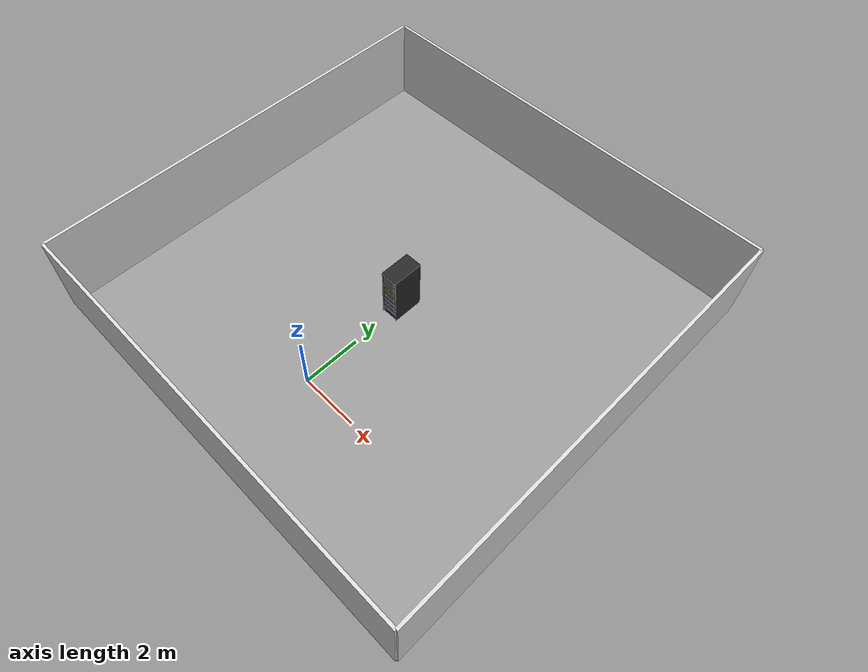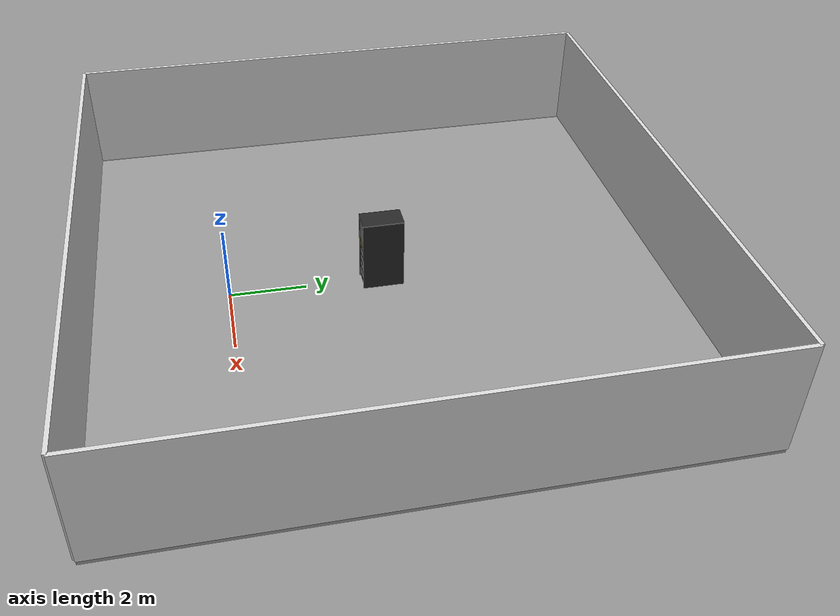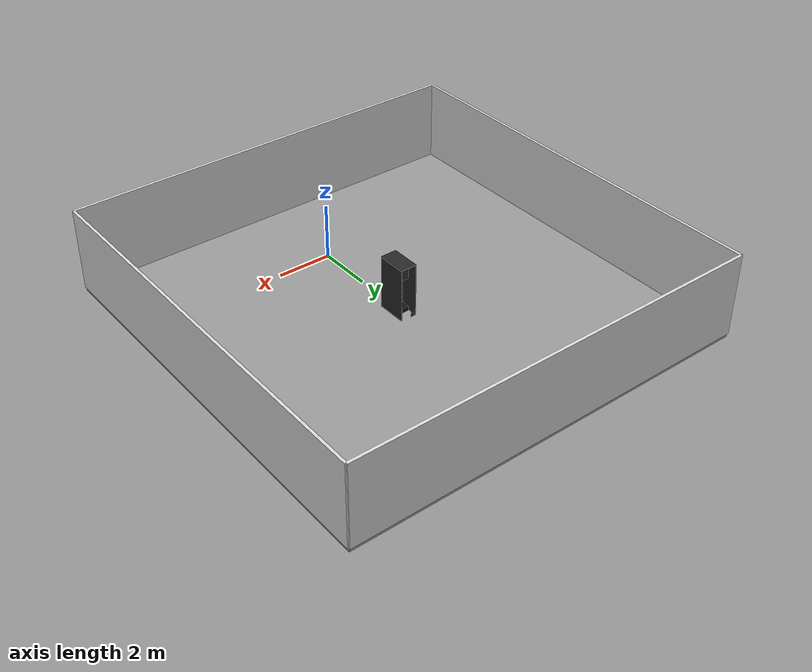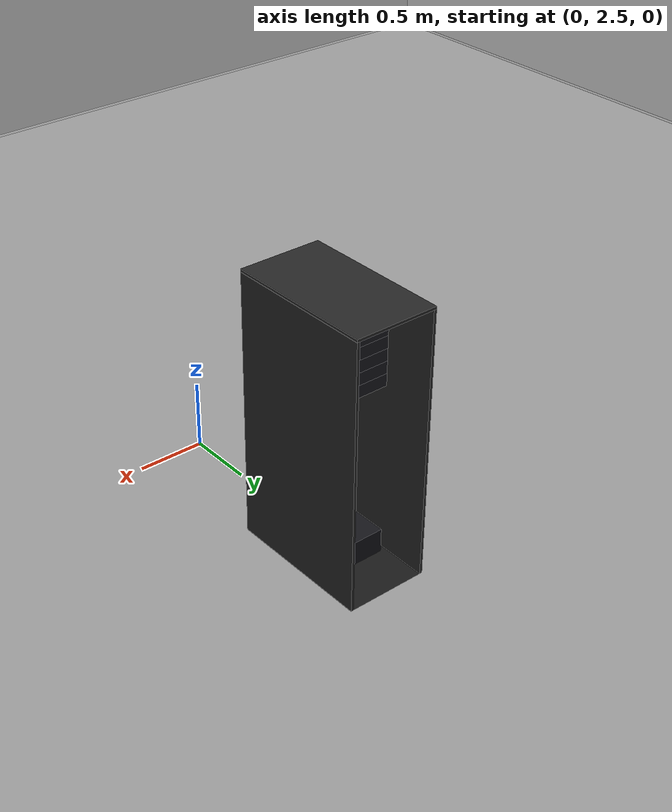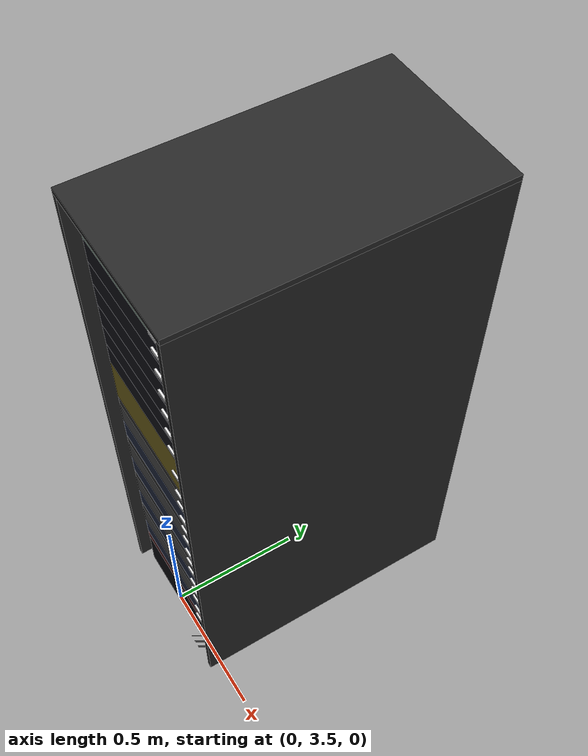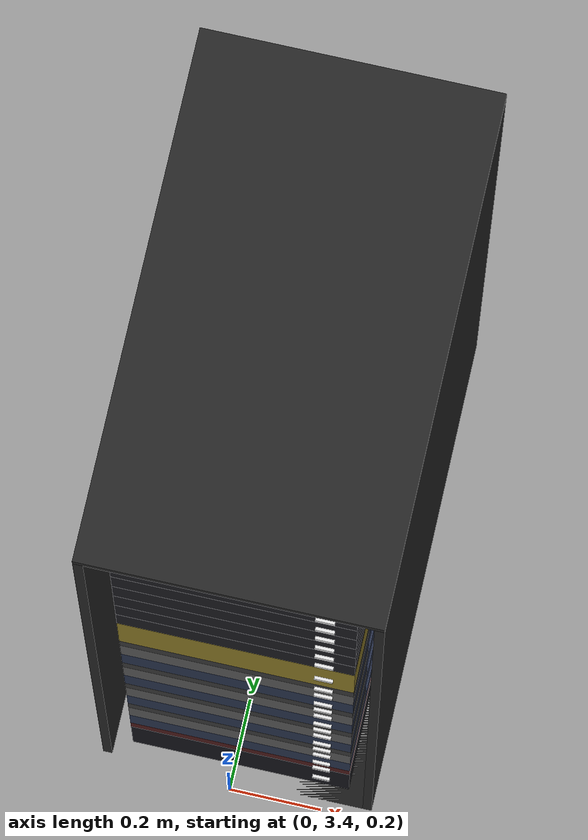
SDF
<sdf version="1.9">
 <world name="server_rack">
  <plugin filename="ignition-gazebo-physics-system" name="ignition::gazebo::systems::Physics"/>
  <plugin filename="ignition-gazebo-sensors-system" name="ignition::gazebo::systems::Sensors">
   <render_engine>ogre2</render_engine>
  </plugin>
  <plugin filename="ignition-gazebo-contact-system" name="ignition::gazebo::systems::Contact"/>
  <plugin filename="ignition-gazebo-scene-broadcaster-system" name="ignition::gazebo::systems::SceneBroadcaster"/>
  <plugin filename="ignition-gazebo-user-commands-system" name="ignition::gazebo::systems::UserCommands"/>
  <physics name="1ms" type="ode">
   <max_step_size>0.001</max_step_size>
   <real_time_factor>1.0</real_time_factor>
  </physics>
  <scene>
   <ambient>0.4 0.4 0.4 1.0</ambient>
   <background>0.7 0.7 0.7 1.0</background>
   <grid>true</grid>
   <origin_visual>true</origin_visual>
  </scene>
  <atmosphere type="adiabatic">
   <temperature>288</temperature>
   <temperature_gradient>0.2</temperature_gradient>
  </atmosphere>
  <light type="directional" name="sun">
   <pose>0 0 10 0 0 0</pose>
   <diffuse>0.8 0.8 0.8 1</diffuse>
   <specular>0.2 0.2 0.2 1</specular>
   <direction>-0.5 0.1 -0.9</direction>
  </light>
  <model name="room_floor">
   <static>true</static>
   <pose>0 4.0 -0.1 0 0 0</pose>
   <link name="link">
    <collision name="collision"><geometry><box><size>15.0 15.0 0.1</size></box></geometry></collision>
    <visual name="visual">
     <geometry><box><size>15.0 15.0 0.1</size></box></geometry>
     <material><ambient>0.6 0.6 0.6 1</ambient><diffuse>0.6 0.6 0.6 1</diffuse></material>
    </visual>
   </link>
  </model>
  <model name="room_wall_front">
   <static>true</static>
   <pose>0 -3.5 1.5 0 0 0</pose>
   <link name="link">
    <collision name="collision"><geometry><box><size>15.0 0.1 3</size></box></geometry></collision>
    <visual name="visual">
     <geometry><box><size>15.0 0.1 3</size></box></geometry>
     <material><ambient>0.85 0.85 0.85 1</ambient><diffuse>0.85 0.85 0.85 1</diffuse></material>
    </visual>
   </link>
  </model>
  <model name="room_wall_back">
   <static>true</static>
   <pose>0 11.5 1.5 0 0 0</pose>
   <link name="link">
    <collision name="collision"><geometry><box><size>15.0 0.1 3</size></box></geometry></collision>
    <visual name="visual">
     <geometry><box><size>15.0 0.1 3</size></box></geometry>
     <material><ambient>0.85 0.85 0.85 1</ambient><diffuse>0.85 0.85 0.85 1</diffuse></material>
    </visual>
   </link>
  </model>
  <model name="room_wall_left">
   <static>true</static>
   <pose>-7.5 4.0 1.5 0 0 0</pose>
   <link name="link">
    <collision name="collision"><geometry><box><size>0.1 15.0 3</size></box></geometry></collision>
    <visual name="visual">
     <geometry><box><size>0.1 15.0 3</size></box></geometry>
     <material><ambient>0.85 0.85 0.85 1</ambient><diffuse>0.85 0.85 0.85 1</diffuse></material>
    </visual>
   </link>
  </model>
  <model name="room_wall_right">
   <static>true</static>
   <pose>7.5 4.0 1.5 0 0 0</pose>
   <link name="link">
    <collision name="collision"><geometry><box><size>0.1 15.0 3</size></box></geometry></collision>
    <visual name="visual">
     <geometry><box><size>0.1 15.0 3</size></box></geometry>
     <material><ambient>0.85 0.85 0.85 1</ambient><diffuse>0.85 0.85 0.85 1</diffuse></material>
    </visual>
   </link>
  </model>
  <include><name>rack_r0_c0</name><uri>model://server_rack_1</uri><pose>0 4.0 -0.1 0 0 0</pose></include>
 </world>
</sdf>

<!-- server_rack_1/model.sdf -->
<sdf version="1.9">
  <model name="server_rack_1">
    <static>true</static>

    <!-- ===================== FRAME ===================== -->

    <link name="frame_side_left">
      <pose>-0.29 0 1.0 0 0 0</pose>
      <collision name="collision">
        <geometry><box><size>0.02 1.07 2.0</size></box></geometry>
      </collision>
      <visual name="visual">
        <geometry><box><size>0.02 1.07 2.0</size></box></geometry>
        <material>
          <ambient>0.15 0.15 0.15 1</ambient>
          <diffuse>0.15 0.15 0.15 1</diffuse>
        </material>
      </visual>
    </link>

    <link name="frame_side_right">
      <pose>0.29 0 1.0 0 0 0</pose>
      <collision name="collision">
        <geometry><box><size>0.02 1.07 2.0</size></box></geometry>
      </collision>
      <visual name="visual">
        <geometry><box><size>0.02 1.07 2.0</size></box></geometry>
        <material>
          <ambient>0.15 0.15 0.15 1</ambient>
          <diffuse>0.15 0.15 0.15 1</diffuse>
        </material>
      </visual>
    </link>

    <link name="frame_top">
      <pose>0 0 2.01 0 0 0</pose>
      <collision name="collision">
        <geometry><box><size>0.60 1.07 0.02</size></box></geometry>
      </collision>
      <visual name="visual">
        <geometry><box><size>0.60 1.07 0.02</size></box></geometry>
        <material>
          <ambient>0.15 0.15 0.15 1</ambient>
          <diffuse>0.15 0.15 0.15 1</diffuse>
        </material>
      </visual>
    </link>

    <link name="frame_plinth">
      <pose>0 0 0.025 0 0 0</pose>
      <collision name="collision">
        <geometry><box><size>0.60 1.07 0.05</size></box></geometry>
      </collision>
      <visual name="visual">
        <geometry><box><size>0.60 1.07 0.05</size></box></geometry>
        <material>
          <ambient>0.10 0.10 0.10 1</ambient>
          <diffuse>0.10 0.10 0.10 1</diffuse>
        </material>
      </visual>
    </link>

    <!-- ===================== EQUIPMENT ===================== -->

    <!-- 4RU UPS, U1-U4 -->
    <link name="ups">
      <pose>0 -0.15 0.1389 0 0 0</pose>
      <collision name="collision">
        <geometry><box><size>0.483 0.70 0.1778</size></box></geometry>
      </collision>
      <visual name="visual">
        <geometry><box><size>0.483 0.70 0.1778</size></box></geometry>
        <material>
          <ambient>0.08 0.08 0.10 1</ambient>
          <diffuse>0.08 0.08 0.10 1</diffuse>
        </material>
      </visual>
    </link>

    <!-- 1RU PDU, U5 -->
    <link name="pdu">
      <pose>0 -0.29 0.2500 0 0 0</pose>
      <collision name="collision">
        <geometry><box><size>0.483 0.42 0.0444</size></box></geometry>
      </collision>
      <visual name="visual">
        <geometry><box><size>0.483 0.42 0.0444</size></box></geometry>
        <material>
          <ambient>0.30 0.10 0.10 1</ambient>
          <diffuse>0.30 0.10 0.10 1</diffuse>
        </material>
      </visual>
    </link>

    <!-- 2RU network switch 1, U6-U7 -->
    <link name="switch_1">
      <pose>0 -0.29 0.3167 0 0 0</pose>
      <collision name="collision">
        <geometry><box><size>0.483 0.42 0.0889</size></box></geometry>
      </collision>
      <visual name="visual">
        <geometry><box><size>0.483 0.42 0.0889</size></box></geometry>
        <material>
          <ambient>0.16 0.20 0.30 1</ambient>
          <diffuse>0.16 0.20 0.30 1</diffuse>
        </material>
      </visual>
    </link>

    <!-- 2RU patch panel 1, U8-U9 -->
    <link name="patch_panel_1">
      <pose>0 -0.425 0.4056 0 0 0</pose>
      <collision name="collision">
        <geometry><box><size>0.483 0.15 0.0889</size></box></geometry>
      </collision>
      <visual name="visual">
        <geometry><box><size>0.483 0.15 0.0889</size></box></geometry>
        <material>
          <ambient>0.35 0.35 0.35 1</ambient>
          <diffuse>0.35 0.35 0.35 1</diffuse>
        </material>
      </visual>
    </link>

    <!-- 1RU cable manager 1, U10 -->
    <link name="cable_manager_1">
      <pose>0 -0.425 0.4723 0 0 0</pose>
      <collision name="collision">
        <geometry><box><size>0.483 0.15 0.0444</size></box></geometry>
      </collision>
      <visual name="visual">
        <geometry><box><size>0.483 0.15 0.0444</size></box></geometry>
        <material>
          <ambient>0.22 0.22 0.22 1</ambient>
          <diffuse>0.22 0.22 0.22 1</diffuse>
        </material>
      </visual>
    </link>

    <!-- 2RU network switch 2, U11-U12 -->
    <link name="switch_2">
      <pose>0 -0.29 0.5390 0 0 0</pose>
      <collision name="collision">
        <geometry><box><size>0.483 0.42 0.0889</size></box></geometry>
      </collision>
      <visual name="visual">
        <geometry><box><size>0.483 0.42 0.0889</size></box></geometry>
        <material>
          <ambient>0.16 0.20 0.30 1</ambient>
          <diffuse>0.16 0.20 0.30 1</diffuse>
        </material>
      </visual>
    </link>

    <!-- 2RU patch panel 2, U13-U14 -->
    <link name="patch_panel_2">
      <pose>0 -0.425 0.6279 0 0 0</pose>
      <collision name="collision">
        <geometry><box><size>0.483 0.15 0.0889</size></box></geometry>
      </collision>
      <visual name="visual">
        <geometry><box><size>0.483 0.15 0.0889</size></box></geometry>
        <material>
          <ambient>0.35 0.35 0.35 1</ambient>
          <diffuse>0.35 0.35 0.35 1</diffuse>
        </material>
      </visual>
    </link>

    <!-- 1RU cable manager 2, U15 -->
    <link name="cable_manager_2">
      <pose>0 -0.425 0.6945 0 0 0</pose>
      <collision name="collision">
        <geometry><box><size>0.483 0.15 0.0444</size></box></geometry>
      </collision>
      <visual name="visual">
        <geometry><box><size>0.483 0.15 0.0444</size></box></geometry>
        <material>
          <ambient>0.22 0.22 0.22 1</ambient>
          <diffuse>0.22 0.22 0.22 1</diffuse>
        </material>
      </visual>
    </link>

    <!-- 2RU network switch 3, U16-U17 -->
    <link name="switch_3">
      <pose>0 -0.29 0.7612 0 0 0</pose>
      <collision name="collision">
        <geometry><box><size>0.483 0.42 0.0889</size></box></geometry>
      </collision>
      <visual name="visual">
        <geometry><box><size>0.483 0.42 0.0889</size></box></geometry>
        <material>
          <ambient>0.16 0.20 0.30 1</ambient>
          <diffuse>0.16 0.20 0.30 1</diffuse>
        </material>
      </visual>
    </link>

    <!-- 2RU patch panel 3, U18-U19 -->
    <link name="patch_panel_3">
      <pose>0 -0.425 0.8501 0 0 0</pose>
      <collision name="collision">
        <geometry><box><size>0.483 0.15 0.0889</size></box></geometry>
      </collision>
      <visual name="visual">
        <geometry><box><size>0.483 0.15 0.0889</size></box></geometry>
        <material>
          <ambient>0.35 0.35 0.35 1</ambient>
          <diffuse>0.35 0.35 0.35 1</diffuse>
        </material>
      </visual>
    </link>

    <!-- 1RU cable manager 3, U20 -->
    <link name="cable_manager_3">
      <pose>0 -0.425 0.9168 0 0 0</pose>
      <collision name="collision">
        <geometry><box><size>0.483 0.15 0.0444</size></box></geometry>
      </collision>
      <visual name="visual">
        <geometry><box><size>0.483 0.15 0.0444</size></box></geometry>
        <material>
          <ambient>0.22 0.22 0.22 1</ambient>
          <diffuse>0.22 0.22 0.22 1</diffuse>
        </material>
      </visual>
    </link>

    <!-- 2RU network switch 4, U21-U22 -->
    <link name="switch_4">
      <pose>0 -0.29 0.9835 0 0 0</pose>
      <collision name="collision">
        <geometry><box><size>0.483 0.42 0.0889</size></box></geometry>
      </collision>
      <visual name="visual">
        <geometry><box><size>0.483 0.42 0.0889</size></box></geometry>
        <material>
          <ambient>0.16 0.20 0.30 1</ambient>
          <diffuse>0.16 0.20 0.30 1</diffuse>
        </material>
      </visual>
    </link>

    <!-- 2RU patch panel 4, U23-U24 -->
    <link name="patch_panel_4">
      <pose>0 -0.425 1.0724 0 0 0</pose>
      <collision name="collision">
        <geometry><box><size>0.483 0.15 0.0889</size></box></geometry>
      </collision>
      <visual name="visual">
        <geometry><box><size>0.483 0.15 0.0889</size></box></geometry>
        <material>
          <ambient>0.35 0.35 0.35 1</ambient>
          <diffuse>0.35 0.35 0.35 1</diffuse>
        </material>
      </visual>
    </link>

    <!-- 1RU cable manager 4, U25 -->
    <link name="cable_manager_4">
      <pose>0 -0.425 1.1390 0 0 0</pose>
      <collision name="collision">
        <geometry><box><size>0.483 0.15 0.0444</size></box></geometry>
      </collision>
      <visual name="visual">
        <geometry><box><size>0.483 0.15 0.0444</size></box></geometry>
        <material>
          <ambient>0.22 0.22 0.22 1</ambient>
          <diffuse>0.22 0.22 0.22 1</diffuse>
        </material>
      </visual>
    </link>

    <!-- 4RU fiber patch panel, U26-U29 -->
    <link name="fiber_patch_panel">
      <pose>0 -0.35 1.2502 0 0 0</pose>
      <collision name="collision">
        <geometry><box><size>0.483 0.30 0.1778</size></box></geometry>
      </collision>
      <visual name="visual">
        <geometry><box><size>0.483 0.30 0.1778</size></box></geometry>
        <material>
          <ambient>0.55 0.48 0.15 1</ambient>
          <diffuse>0.55 0.48 0.15 1</diffuse>
        </material>
      </visual>
    </link>

    <!-- 2RU server 1, U30-U31 -->
    <link name="server_1">
      <pose>0 -0.15 1.3835 0 0 0</pose>
      <collision name="collision">
        <geometry><box><size>0.483 0.70 0.0889</size></box></geometry>
      </collision>
      <visual name="visual">
        <geometry><box><size>0.483 0.70 0.0889</size></box></geometry>
        <material>
          <ambient>0.10 0.10 0.12 1</ambient>
          <diffuse>0.10 0.10 0.12 1</diffuse>
        </material>
      </visual>
    </link>

    <!-- 2RU server 2, U32-U33 -->
    <link name="server_2">
      <pose>0 -0.15 1.4724 0 0 0</pose>
      <collision name="collision">
        <geometry><box><size>0.483 0.70 0.0889</size></box></geometry>
      </collision>
      <visual name="visual">
        <geometry><box><size>0.483 0.70 0.0889</size></box></geometry>
        <material>
          <ambient>0.10 0.10 0.12 1</ambient>
          <diffuse>0.10 0.10 0.12 1</diffuse>
        </material>
      </visual>
    </link>

    <!-- 2RU server 3, U34-U35 -->
    <link name="server_3">
      <pose>0 -0.15 1.5613 0 0 0</pose>
      <collision name="collision">
        <geometry><box><size>0.483 0.70 0.0889</size></box></geometry>
      </collision>
      <visual name="visual">
        <geometry><box><size>0.483 0.70 0.0889</size></box></geometry>
        <material>
          <ambient>0.10 0.10 0.12 1</ambient>
          <diffuse>0.10 0.10 0.12 1</diffuse>
        </material>
      </visual>
    </link>

    <!-- 2RU server 4, U36-U37 -->
    <link name="server_4">
      <pose>0 -0.15 1.6502 0 0 0</pose>
      <collision name="collision">
        <geometry><box><size>0.483 0.70 0.0889</size></box></geometry>
      </collision>
      <visual name="visual">
        <geometry><box><size>0.483 0.70 0.0889</size></box></geometry>
        <material>
          <ambient>0.10 0.10 0.12 1</ambient>
          <diffuse>0.10 0.10 0.12 1</diffuse>
        </material>
      </visual>
    </link>

    <!-- 2RU server 5, U38-U39 -->
    <link name="server_5">
      <pose>0 -0.15 1.7391 0 0 0</pose>
      <collision name="collision">
        <geometry><box><size>0.483 0.70 0.0889</size></box></geometry>
      </collision>
      <visual name="visual">
        <geometry><box><size>0.483 0.70 0.0889</size></box></geometry>
        <material>
          <ambient>0.10 0.10 0.12 1</ambient>
          <diffuse>0.10 0.10 0.12 1</diffuse>
        </material>
      </visual>
    </link>

    <!-- 2RU server 6, U40-U41 -->
    <link name="server_6">
      <pose>0 -0.15 1.8280 0 0 0</pose>
      <collision name="collision">
        <geometry><box><size>0.483 0.70 0.0889</size></box></geometry>
      </collision>
      <visual name="visual">
        <geometry><box><size>0.483 0.70 0.0889</size></box></geometry>
        <material>
          <ambient>0.10 0.10 0.12 1</ambient>
          <diffuse>0.10 0.10 0.12 1</diffuse>
        </material>
      </visual>
    </link>

    <!-- 1RU KVM console, U42 -->
    <link name="kvm">
      <pose>0 -0.29 1.8947 0 0 0</pose>
      <collision name="collision">
        <geometry><box><size>0.483 0.42 0.0444</size></box></geometry>
      </collision>
      <visual name="visual">
        <geometry><box><size>0.483 0.42 0.0444</size></box></geometry>
        <material>
          <ambient>0.12 0.25 0.18 1</ambient>
          <diffuse>0.12 0.25 0.18 1</diffuse>
        </material>
      </visual>
    </link>

    <!-- ===================== RFID TAGS =====================
         Local y = -0.503: 3 mm proud of the rack front plane (y = -0.50).
         Local z equals the tagged equipment's local z. -->

    <!-- ups, U1-4 -->
    <model name="barcode_label_031FB00">
      <static>true</static>
      <pose>0.18 -0.5042 0.1389 0 0 0</pose>
      <link name="label_link">
        <visual name="substrate">
          <geometry><box><size>0.03810 0.00635 0.01270</size></box></geometry>
          <material>
            <ambient>0.9 0.9 0.9 1</ambient>
            <diffuse>0.9 0.9 0.9 1</diffuse>
          </material>
        </visual>
        <visual name="print">
          <pose>0 -0.00327 0 1.5708 0 0</pose>
          <geometry><box><size>0.03810 0.01270 0.0002</size></box></geometry>
          <material>
            <ambient>1 1 1 1</ambient>
            <diffuse>1 1 1 1</diffuse>
            <pbr><metal>
              <albedo_map>model://barcode_labels/materials/textures/031FB00.png</albedo_map>
              <metalness>0.0</metalness>
              <roughness>1.0</roughness>
            </metal></pbr>
          </material>
        </visual>
      </link>
    </model>

    <!-- pdu, U5-5 -->
    <model name="barcode_label_031FB01">
      <static>true</static>
      <pose>0.18 -0.5042 0.2500 0 0 0</pose>
      <link name="label_link">
        <visual name="substrate">
          <geometry><box><size>0.03810 0.00635 0.01270</size></box></geometry>
          <material>
            <ambient>0.9 0.9 0.9 1</ambient>
            <diffuse>0.9 0.9 0.9 1</diffuse>
          </material>
        </visual>
        <visual name="print">
          <pose>0 -0.00327 0 1.5708 0 0</pose>
          <geometry><box><size>0.03810 0.01270 0.0002</size></box></geometry>
          <material>
            <ambient>1 1 1 1</ambient>
            <diffuse>1 1 1 1</diffuse>
            <pbr><metal>
              <albedo_map>model://barcode_labels/materials/textures/031FB01.png</albedo_map>
              <metalness>0.0</metalness>
              <roughness>1.0</roughness>
            </metal></pbr>
          </material>
        </visual>
      </link>
    </model>

    <!-- switch, U6-7 -->
    <model name="barcode_label_031FB02">
      <static>true</static>
      <pose>0.18 -0.5042 0.3167 0 0 0</pose>
      <link name="label_link">
        <visual name="substrate">
          <geometry><box><size>0.03810 0.00635 0.01270</size></box></geometry>
          <material>
            <ambient>0.9 0.9 0.9 1</ambient>
            <diffuse>0.9 0.9 0.9 1</diffuse>
          </material>
        </visual>
        <visual name="print">
          <pose>0 -0.00327 0 1.5708 0 0</pose>
          <geometry><box><size>0.03810 0.01270 0.0002</size></box></geometry>
          <material>
            <ambient>1 1 1 1</ambient>
            <diffuse>1 1 1 1</diffuse>
            <pbr><metal>
              <albedo_map>model://barcode_labels/materials/textures/031FB02.png</albedo_map>
              <metalness>0.0</metalness>
              <roughness>1.0</roughness>
            </metal></pbr>
          </material>
        </visual>
      </link>
    </model>

    <!-- patch_panel, U8-9 -->
    <model name="barcode_label_031FB03">
      <static>true</static>
      <pose>0.18 -0.5042 0.4056 0 0 0</pose>
      <link name="label_link">
        <visual name="substrate">
          <geometry><box><size>0.03810 0.00635 0.01270</size></box></geometry>
          <material>
            <ambient>0.9 0.9 0.9 1</ambient>
            <diffuse>0.9 0.9 0.9 1</diffuse>
          </material>
        </visual>
        <visual name="print">
          <pose>0 -0.00327 0 1.5708 0 0</pose>
          <geometry><box><size>0.03810 0.01270 0.0002</size></box></geometry>
          <material>
            <ambient>1 1 1 1</ambient>
            <diffuse>1 1 1 1</diffuse>
            <pbr><metal>
              <albedo_map>model://barcode_labels/materials/textures/031FB03.png</albedo_map>
              <metalness>0.0</metalness>
              <roughness>1.0</roughness>
            </metal></pbr>
          </material>
        </visual>
      </link>
    </model>

    <!-- cable_manager, U10-10 -->
    <model name="barcode_label_031FB04">
      <static>true</static>
      <pose>0.18 -0.5042 0.4723 0 0 0</pose>
      <link name="label_link">
        <visual name="substrate">
          <geometry><box><size>0.03810 0.00635 0.01270</size></box></geometry>
          <material>
            <ambient>0.9 0.9 0.9 1</ambient>
            <diffuse>0.9 0.9 0.9 1</diffuse>
          </material>
        </visual>
        <visual name="print">
          <pose>0 -0.00327 0 1.5708 0 0</pose>
          <geometry><box><size>0.03810 0.01270 0.0002</size></box></geometry>
          <material>
            <ambient>1 1 1 1</ambient>
            <diffuse>1 1 1 1</diffuse>
            <pbr><metal>
              <albedo_map>model://barcode_labels/materials/textures/031FB04.png</albedo_map>
              <metalness>0.0</metalness>
              <roughness>1.0</roughness>
            </metal></pbr>
          </material>
        </visual>
      </link>
    </model>

    <!-- switch, U11-12 -->
    <model name="barcode_label_031FB05">
      <static>true</static>
      <pose>0.18 -0.5042 0.5390 0 0 0</pose>
      <link name="label_link">
        <visual name="substrate">
          <geometry><box><size>0.03810 0.00635 0.01270</size></box></geometry>
          <material>
            <ambient>0.9 0.9 0.9 1</ambient>
            <diffuse>0.9 0.9 0.9 1</diffuse>
          </material>
        </visual>
        <visual name="print">
          <pose>0 -0.00327 0 1.5708 0 0</pose>
          <geometry><box><size>0.03810 0.01270 0.0002</size></box></geometry>
          <material>
            <ambient>1 1 1 1</ambient>
            <diffuse>1 1 1 1</diffuse>
            <pbr><metal>
              <albedo_map>model://barcode_labels/materials/textures/031FB05.png</albedo_map>
              <metalness>0.0</metalness>
              <roughness>1.0</roughness>
            </metal></pbr>
          </material>
        </visual>
      </link>
    </model>

    <!-- patch_panel, U13-14 -->
    <model name="barcode_label_031FB06">
      <static>true</static>
      <pose>0.18 -0.5042 0.6279 0 0 0</pose>
      <link name="label_link">
        <visual name="substrate">
          <geometry><box><size>0.03810 0.00635 0.01270</size></box></geometry>
          <material>
            <ambient>0.9 0.9 0.9 1</ambient>
            <diffuse>0.9 0.9 0.9 1</diffuse>
          </material>
        </visual>
        <visual name="print">
          <pose>0 -0.00327 0 1.5708 0 0</pose>
          <geometry><box><size>0.03810 0.01270 0.0002</size></box></geometry>
          <material>
            <ambient>1 1 1 1</ambient>
            <diffuse>1 1 1 1</diffuse>
            <pbr><metal>
              <albedo_map>model://barcode_labels/materials/textures/031FB06.png</albedo_map>
              <metalness>0.0</metalness>
              <roughness>1.0</roughness>
            </metal></pbr>
          </material>
        </visual>
      </link>
    </model>

    <!-- cable_manager, U15-15 -->
    <model name="barcode_label_031FB07">
      <static>true</static>
      <pose>0.18 -0.5042 0.6945 0 0 0</pose>
      <link name="label_link">
        <visual name="substrate">
          <geometry><box><size>0.03810 0.00635 0.01270</size></box></geometry>
          <material>
            <ambient>0.9 0.9 0.9 1</ambient>
            <diffuse>0.9 0.9 0.9 1</diffuse>
          </material>
        </visual>
        <visual name="print">
          <pose>0 -0.00327 0 1.5708 0 0</pose>
          <geometry><box><size>0.03810 0.01270 0.0002</size></box></geometry>
          <material>
            <ambient>1 1 1 1</ambient>
            <diffuse>1 1 1 1</diffuse>
            <pbr><metal>
              <albedo_map>model://barcode_labels/materials/textures/031FB07.png</albedo_map>
              <metalness>0.0</metalness>
              <roughness>1.0</roughness>
            </metal></pbr>
          </material>
        </visual>
      </link>
    </model>

    <!-- switch, U16-17 -->
    <model name="barcode_label_031FB08">
      <static>true</static>
      <pose>0.18 -0.5042 0.7612 0 0 0</pose>
      <link name="label_link">
        <visual name="substrate">
          <geometry><box><size>0.03810 0.00635 0.01270</size></box></geometry>
          <material>
            <ambient>0.9 0.9 0.9 1</ambient>
            <diffuse>0.9 0.9 0.9 1</diffuse>
          </material>
        </visual>
        <visual name="print">
          <pose>0 -0.00327 0 1.5708 0 0</pose>
          <geometry><box><size>0.03810 0.01270 0.0002</size></box></geometry>
          <material>
            <ambient>1 1 1 1</ambient>
            <diffuse>1 1 1 1</diffuse>
            <pbr><metal>
              <albedo_map>model://barcode_labels/materials/textures/031FB08.png</albedo_map>
              <metalness>0.0</metalness>
              <roughness>1.0</roughness>
            </metal></pbr>
          </material>
        </visual>
      </link>
    </model>

    <!-- patch_panel, U18-19 -->
    <model name="barcode_label_031FB09">
      <static>true</static>
      <pose>0.18 -0.5042 0.8501 0 0 0</pose>
      <link name="label_link">
        <visual name="substrate">
          <geometry><box><size>0.03810 0.00635 0.01270</size></box></geometry>
          <material>
            <ambient>0.9 0.9 0.9 1</ambient>
            <diffuse>0.9 0.9 0.9 1</diffuse>
          </material>
        </visual>
        <visual name="print">
          <pose>0 -0.00327 0 1.5708 0 0</pose>
          <geometry><box><size>0.03810 0.01270 0.0002</size></box></geometry>
          <material>
            <ambient>1 1 1 1</ambient>
            <diffuse>1 1 1 1</diffuse>
            <pbr><metal>
              <albedo_map>model://barcode_labels/materials/textures/031FB09.png</albedo_map>
              <metalness>0.0</metalness>
              <roughness>1.0</roughness>
            </metal></pbr>
          </material>
        </visual>
      </link>
    </model>

    <!-- cable_manager, U20-20 -->
    <model name="barcode_label_031FB0A">
      <static>true</static>
      <pose>0.18 -0.5042 0.9168 0 0 0</pose>
      <link name="label_link">
        <visual name="substrate">
          <geometry><box><size>0.03810 0.00635 0.01270</size></box></geometry>
          <material>
            <ambient>0.9 0.9 0.9 1</ambient>
            <diffuse>0.9 0.9 0.9 1</diffuse>
          </material>
        </visual>
        <visual name="print">
          <pose>0 -0.00327 0 1.5708 0 0</pose>
          <geometry><box><size>0.03810 0.01270 0.0002</size></box></geometry>
          <material>
            <ambient>1 1 1 1</ambient>
            <diffuse>1 1 1 1</diffuse>
            <pbr><metal>
              <albedo_map>model://barcode_labels/materials/textures/031FB0A.png</albedo_map>
              <metalness>0.0</metalness>
              <roughness>1.0</roughness>
            </metal></pbr>
          </material>
        </visual>
      </link>
    </model>

    <!-- switch, U21-22 -->
    <model name="barcode_label_031FB0B">
      <static>true</static>
      <pose>0.18 -0.5042 0.9835 0 0 0</pose>
      <link name="label_link">
        <visual name="substrate">
          <geometry><box><size>0.03810 0.00635 0.01270</size></box></geometry>
          <material>
            <ambient>0.9 0.9 0.9 1</ambient>
            <diffuse>0.9 0.9 0.9 1</diffuse>
          </material>
        </visual>
        <visual name="print">
          <pose>0 -0.00327 0 1.5708 0 0</pose>
          <geometry><box><size>0.03810 0.01270 0.0002</size></box></geometry>
          <material>
            <ambient>1 1 1 1</ambient>
            <diffuse>1 1 1 1</diffuse>
            <pbr><metal>
              <albedo_map>model://barcode_labels/materials/textures/031FB0B.png</albedo_map>
              <metalness>0.0</metalness>
              <roughness>1.0</roughness>
            </metal></pbr>
          </material>
        </visual>
      </link>
    </model>

    <!-- patch_panel, U23-24 -->
    <model name="barcode_label_031FB0C">
      <static>true</static>
      <pose>0.18 -0.5042 1.0724 0 0 0</pose>
      <link name="label_link">
        <visual name="substrate">
          <geometry><box><size>0.03810 0.00635 0.01270</size></box></geometry>
          <material>
            <ambient>0.9 0.9 0.9 1</ambient>
            <diffuse>0.9 0.9 0.9 1</diffuse>
          </material>
        </visual>
        <visual name="print">
          <pose>0 -0.00327 0 1.5708 0 0</pose>
          <geometry><box><size>0.03810 0.01270 0.0002</size></box></geometry>
          <material>
            <ambient>1 1 1 1</ambient>
            <diffuse>1 1 1 1</diffuse>
            <pbr><metal>
              <albedo_map>model://barcode_labels/materials/textures/031FB0C.png</albedo_map>
              <metalness>0.0</metalness>
              <roughness>1.0</roughness>
            </metal></pbr>
          </material>
        </visual>
      </link>
    </model>

    <!-- cable_manager, U25-25 -->
    <model name="barcode_label_031FB0D">
      <static>true</static>
      <pose>0.18 -0.5042 1.1390 0 0 0</pose>
      <link name="label_link">
        <visual name="substrate">
          <geometry><box><size>0.03810 0.00635 0.01270</size></box></geometry>
          <material>
            <ambient>0.9 0.9 0.9 1</ambient>
            <diffuse>0.9 0.9 0.9 1</diffuse>
          </material>
        </visual>
        <visual name="print">
          <pose>0 -0.00327 0 1.5708 0 0</pose>
          <geometry><box><size>0.03810 0.01270 0.0002</size></box></geometry>
          <material>
            <ambient>1 1 1 1</ambient>
            <diffuse>1 1 1 1</diffuse>
            <pbr><metal>
              <albedo_map>model://barcode_labels/materials/textures/031FB0D.png</albedo_map>
              <metalness>0.0</metalness>
              <roughness>1.0</roughness>
            </metal></pbr>
          </material>
        </visual>
      </link>
    </model>

    <!-- fiber_patch_panel, U26-29 -->
    <model name="barcode_label_031FB0E">
      <static>true</static>
      <pose>0.18 -0.5042 1.2502 0 0 0</pose>
      <link name="label_link">
        <visual name="substrate">
          <geometry><box><size>0.03810 0.00635 0.01270</size></box></geometry>
          <material>
            <ambient>0.9 0.9 0.9 1</ambient>
            <diffuse>0.9 0.9 0.9 1</diffuse>
          </material>
        </visual>
        <visual name="print">
          <pose>0 -0.00327 0 1.5708 0 0</pose>
          <geometry><box><size>0.03810 0.01270 0.0002</size></box></geometry>
          <material>
            <ambient>1 1 1 1</ambient>
            <diffuse>1 1 1 1</diffuse>
            <pbr><metal>
              <albedo_map>model://barcode_labels/materials/textures/031FB0E.png</albedo_map>
              <metalness>0.0</metalness>
              <roughness>1.0</roughness>
            </metal></pbr>
          </material>
        </visual>
      </link>
    </model>

    <!-- server, U30-31 -->
    <model name="barcode_label_031FB0F">
      <static>true</static>
      <pose>0.18 -0.5042 1.3835 0 0 0</pose>
      <link name="label_link">
        <visual name="substrate">
          <geometry><box><size>0.03810 0.00635 0.01270</size></box></geometry>
          <material>
            <ambient>0.9 0.9 0.9 1</ambient>
            <diffuse>0.9 0.9 0.9 1</diffuse>
          </material>
        </visual>
        <visual name="print">
          <pose>0 -0.00327 0 1.5708 0 0</pose>
          <geometry><box><size>0.03810 0.01270 0.0002</size></box></geometry>
          <material>
            <ambient>1 1 1 1</ambient>
            <diffuse>1 1 1 1</diffuse>
            <pbr><metal>
              <albedo_map>model://barcode_labels/materials/textures/031FB0F.png</albedo_map>
              <metalness>0.0</metalness>
              <roughness>1.0</roughness>
            </metal></pbr>
          </material>
        </visual>
      </link>
    </model>

    <!-- server, U32-33 -->
    <model name="barcode_label_031FB10">
      <static>true</static>
      <pose>0.18 -0.5042 1.4724 0 0 0</pose>
      <link name="label_link">
        <visual name="substrate">
          <geometry><box><size>0.03810 0.00635 0.01270</size></box></geometry>
          <material>
            <ambient>0.9 0.9 0.9 1</ambient>
            <diffuse>0.9 0.9 0.9 1</diffuse>
          </material>
        </visual>
        <visual name="print">
          <pose>0 -0.00327 0 1.5708 0 0</pose>
          <geometry><box><size>0.03810 0.01270 0.0002</size></box></geometry>
          <material>
            <ambient>1 1 1 1</ambient>
            <diffuse>1 1 1 1</diffuse>
            <pbr><metal>
              <albedo_map>model://barcode_labels/materials/textures/031FB10.png</albedo_map>
              <metalness>0.0</metalness>
              <roughness>1.0</roughness>
            </metal></pbr>
          </material>
        </visual>
      </link>
    </model>

    <!-- server, U34-35 -->
    <model name="barcode_label_031FB11">
      <static>true</static>
      <pose>0.18 -0.5042 1.5613 0 0 0</pose>
      <link name="label_link">
        <visual name="substrate">
          <geometry><box><size>0.03810 0.00635 0.01270</size></box></geometry>
          <material>
            <ambient>0.9 0.9 0.9 1</ambient>
            <diffuse>0.9 0.9 0.9 1</diffuse>
          </material>
        </visual>
        <visual name="print">
          <pose>0 -0.00327 0 1.5708 0 0</pose>
          <geometry><box><size>0.03810 0.01270 0.0002</size></box></geometry>
          <material>
            <ambient>1 1 1 1</ambient>
            <diffuse>1 1 1 1</diffuse>
            <pbr><metal>
              <albedo_map>model://barcode_labels/materials/textures/031FB11.png</albedo_map>
              <metalness>0.0</metalness>
              <roughness>1.0</roughness>
            </metal></pbr>
          </material>
        </visual>
      </link>
    </model>

    <!-- server, U36-37 -->
    <model name="barcode_label_031FB12">
      <static>true</static>
      <pose>0.18 -0.5042 1.6502 0 0 0</pose>
      <link name="label_link">
        <visual name="substrate">
          <geometry><box><size>0.03810 0.00635 0.01270</size></box></geometry>
          <material>
            <ambient>0.9 0.9 0.9 1</ambient>
            <diffuse>0.9 0.9 0.9 1</diffuse>
          </material>
        </visual>
        <visual name="print">
          <pose>0 -0.00327 0 1.5708 0 0</pose>
          <geometry><box><size>0.03810 0.01270 0.0002</size></box></geometry>
          <material>
            <ambient>1 1 1 1</ambient>
            <diffuse>1 1 1 1</diffuse>
            <pbr><metal>
              <albedo_map>model://barcode_labels/materials/textures/031FB12.png</albedo_map>
              <metalness>0.0</metalness>
              <roughness>1.0</roughness>
            </metal></pbr>
          </material>
        </visual>
      </link>
    </model>

    <!-- server, U38-39 -->
    <model name="barcode_label_031FB13">
      <static>true</static>
      <pose>0.18 -0.5042 1.7391 0 0 0</pose>
      <link name="label_link">
        <visual name="substrate">
          <geometry><box><size>0.03810 0.00635 0.01270</size></box></geometry>
          <material>
            <ambient>0.9 0.9 0.9 1</ambient>
            <diffuse>0.9 0.9 0.9 1</diffuse>
          </material>
        </visual>
        <visual name="print">
          <pose>0 -0.00327 0 1.5708 0 0</pose>
          <geometry><box><size>0.03810 0.01270 0.0002</size></box></geometry>
          <material>
            <ambient>1 1 1 1</ambient>
            <diffuse>1 1 1 1</diffuse>
            <pbr><metal>
              <albedo_map>model://barcode_labels/materials/textures/031FB13.png</albedo_map>
              <metalness>0.0</metalness>
              <roughness>1.0</roughness>
            </metal></pbr>
          </material>
        </visual>
      </link>
    </model>

    <!-- server, U40-41 -->
    <model name="barcode_label_031FB14">
      <static>true</static>
      <pose>0.18 -0.5042 1.8280 0 0 0</pose>
      <link name="label_link">
        <visual name="substrate">
          <geometry><box><size>0.03810 0.00635 0.01270</size></box></geometry>
          <material>
            <ambient>0.9 0.9 0.9 1</ambient>
            <diffuse>0.9 0.9 0.9 1</diffuse>
          </material>
        </visual>
        <visual name="print">
          <pose>0 -0.00327 0 1.5708 0 0</pose>
          <geometry><box><size>0.03810 0.01270 0.0002</size></box></geometry>
          <material>
            <ambient>1 1 1 1</ambient>
            <diffuse>1 1 1 1</diffuse>
            <pbr><metal>
              <albedo_map>model://barcode_labels/materials/textures/031FB14.png</albedo_map>
              <metalness>0.0</metalness>
              <roughness>1.0</roughness>
            </metal></pbr>
          </material>
        </visual>
      </link>
    </model>

    <!-- kvm, U42-42 -->
    <model name="barcode_label_031FB15">
      <static>true</static>
      <pose>0.18 -0.5042 1.8947 0 0 0</pose>
      <link name="label_link">
        <visual name="substrate">
          <geometry><box><size>0.03810 0.00635 0.01270</size></box></geometry>
          <material>
            <ambient>0.9 0.9 0.9 1</ambient>
            <diffuse>0.9 0.9 0.9 1</diffuse>
          </material>
        </visual>
        <visual name="print">
          <pose>0 -0.00327 0 1.5708 0 0</pose>
          <geometry><box><size>0.03810 0.01270 0.0002</size></box></geometry>
          <material>
            <ambient>1 1 1 1</ambient>
            <diffuse>1 1 1 1</diffuse>
            <pbr><metal>
              <albedo_map>model://barcode_labels/materials/textures/031FB15.png</albedo_map>
              <metalness>0.0</metalness>
              <roughness>1.0</roughness>
            </metal></pbr>
          </material>
        </visual>
      </link>
    </model>

  </model>
</sdf>
